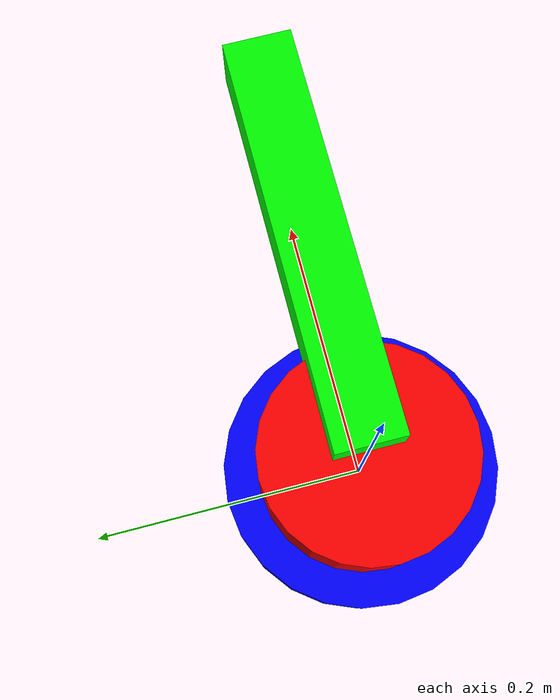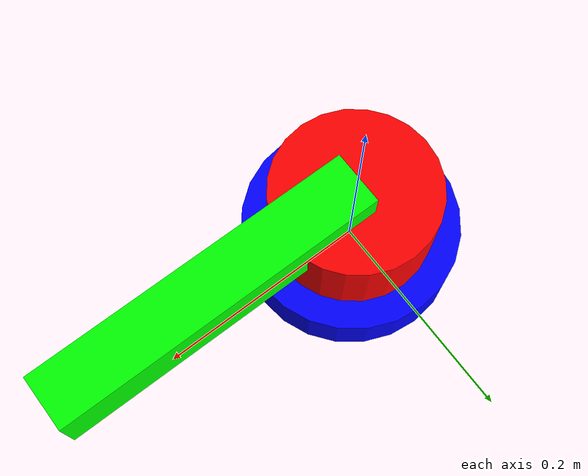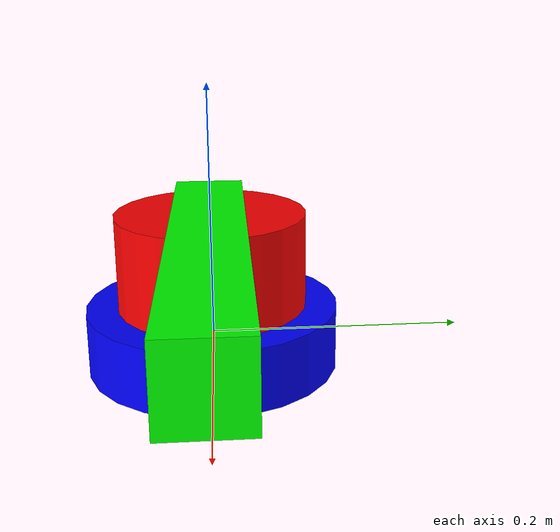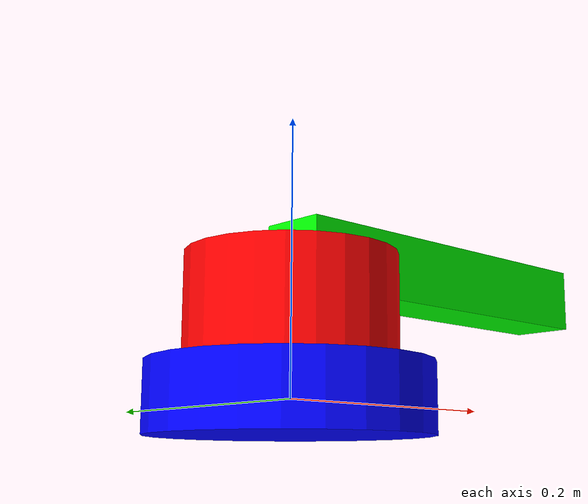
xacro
<?xml version="1.0"?>
<robot xmlns:xacro="http://wiki.ros.org/xacro" name="ur3_test">
    <!-- Create a simple robot with basic shapes for testing -->
    <link name="world"/>

    <link name="base_link">
        <visual>
            <origin xyz="0 0 0" rpy="0 0 0"/>
            <geometry>
                <cylinder radius="0.1" length="0.05"/>
            </geometry>
            <material name="blue">
                <color rgba="0 0 1 1"/>
            </material>
        </visual>
        <collision>
            <origin xyz="0 0 0" rpy="0 0 0"/>
            <geometry>
                <cylinder radius="0.1" length="0.05"/>
            </geometry>
        </collision>
        <inertial>
            <mass value="1.0"/>
            <origin xyz="0 0 0" rpy="0 0 0"/>
            <inertia ixx="0.01" ixy="0" ixz="0" iyy="0.01" iyz="0" izz="0.01"/>
        </inertial>
    </link>

    <joint name="world_joint" type="fixed">
        <parent link="world"/>
        <child link="base_link"/>
        <origin xyz="0 0 0" rpy="0 0 0"/>
    </joint>

    <link name="shoulder_link">
        <visual>
            <origin xyz="0 0 0" rpy="0 0 0"/>
            <geometry>
                <cylinder radius="0.075" length="0.1"/>
            </geometry>
            <material name="red">
                <color rgba="1 0 0 1"/>
            </material>
        </visual>
        <collision>
            <origin xyz="0 0 0" rpy="0 0 0"/>
            <geometry>
                <cylinder radius="0.075" length="0.1"/>
            </geometry>
        </collision>
        <inertial>
            <mass value="1.0"/>
            <origin xyz="0 0 0" rpy="0 0 0"/>
            <inertia ixx="0.01" ixy="0" ixz="0" iyy="0.01" iyz="0" izz="0.01"/>
        </inertial>
    </link>

    <joint name="shoulder_pan_joint" type="revolute">
        <parent link="base_link"/>
        <child link="shoulder_link"/>
        <origin xyz="0 0 0.05" rpy="0 0 0"/>
        <axis xyz="0 0 1"/>
        <limit lower="-3.14159" upper="3.14159" effort="150.0" velocity="3.15"/>
    </joint>

    <link name="upper_arm_link">
        <visual>
            <origin xyz="0 0 0.15" rpy="0 0 0"/>
            <geometry>
                <box size="0.05 0.05 0.3"/>
            </geometry>
            <material name="green">
                <color rgba="0 1 0 1"/>
            </material>
        </visual>
        <collision>
            <origin xyz="0 0 0.15" rpy="0 0 0"/>
            <geometry>
                <box size="0.05 0.05 0.3"/>
            </geometry>
        </collision>
        <inertial>
            <mass value="1.0"/>
            <origin xyz="0 0 0.15" rpy="0 0 0"/>
            <inertia ixx="0.01" ixy="0" ixz="0" iyy="0.01" iyz="0" izz="0.01"/>
        </inertial>
    </link>

    <joint name="shoulder_lift_joint" type="revolute">
        <parent link="shoulder_link"/>
        <child link="upper_arm_link"/>
        <origin xyz="0 0 0.05" rpy="0 1.57079632679 0"/>
        <axis xyz="0 1 0"/>
        <limit lower="-3.14159" upper="3.14159" effort="150.0" velocity="3.15"/>
    </joint>

    <!-- Gazebo-specific elements -->
    <gazebo reference="base_link">
        <material>Gazebo/Blue</material>
    </gazebo>

    <gazebo reference="shoulder_link">
        <material>Gazebo/Red</material>
    </gazebo>

    <gazebo reference="upper_arm_link">
        <material>Gazebo/Green</material>
    </gazebo>
</robot>
